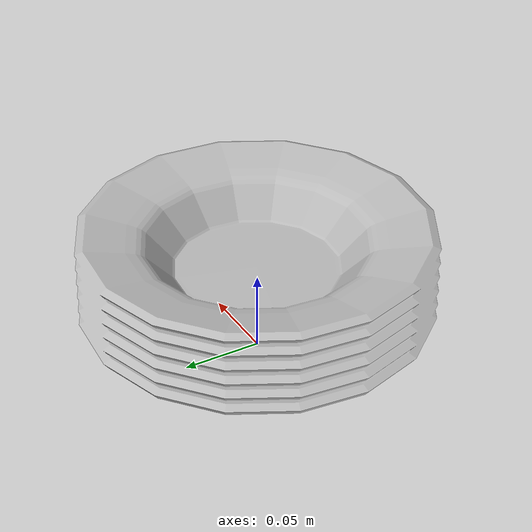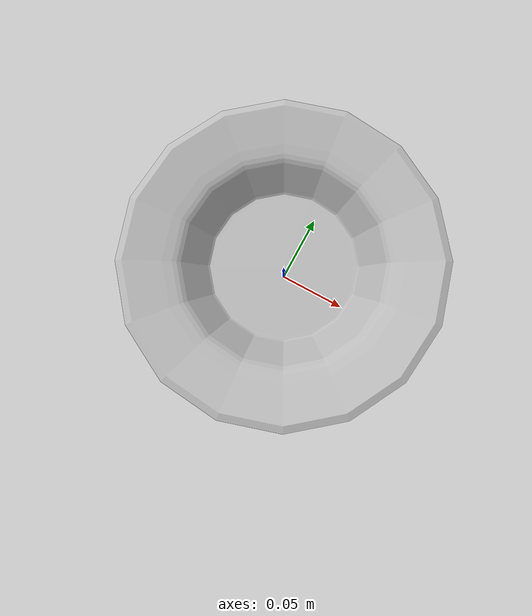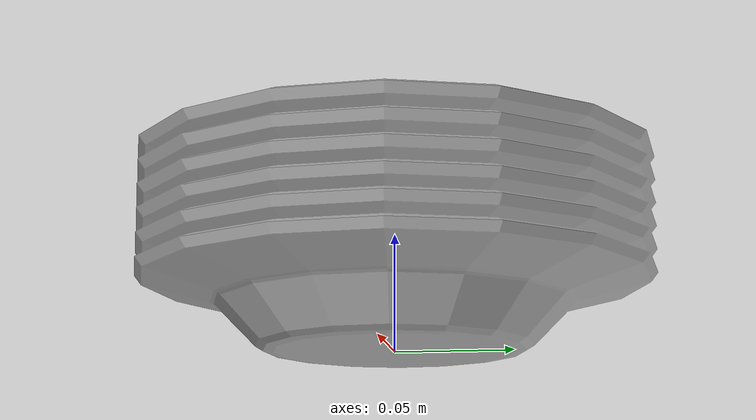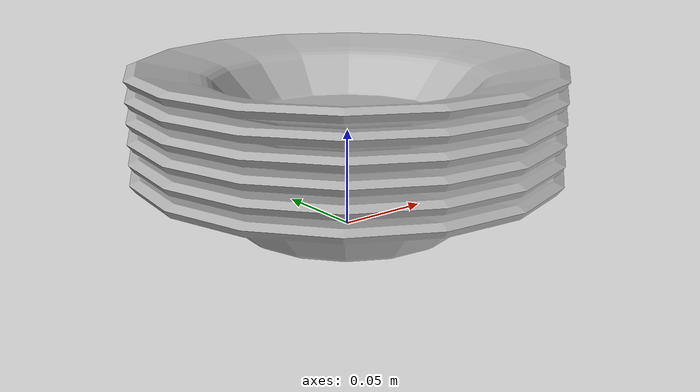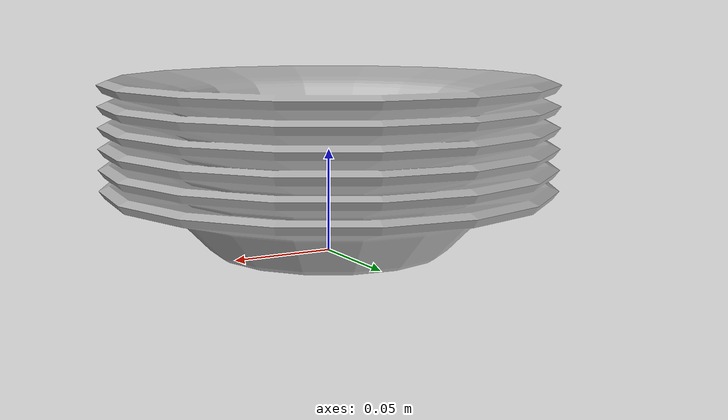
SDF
<?xml version='1.0'?>
<sdf version='1.4'>
  <model name='530'>
    <pose>0 0 0 0 0 0</pose>
    <static>true</static>
    <link name='link'>
      <collision name='collision'>
        <pose>0 0 0 0 0 0</pose>
        <geometry>
          <box>
            <size>0.219994 0.219994 2</size>
          </box>
        </geometry>
      </collision>
      <visual name='visual'>
        <pose>0 0 0 0 0 0</pose>
        <geometry>
          <mesh><uri>model://530/530.dae</uri></mesh>
        </geometry>
      </visual>
    </link>
  </model>
</sdf>
